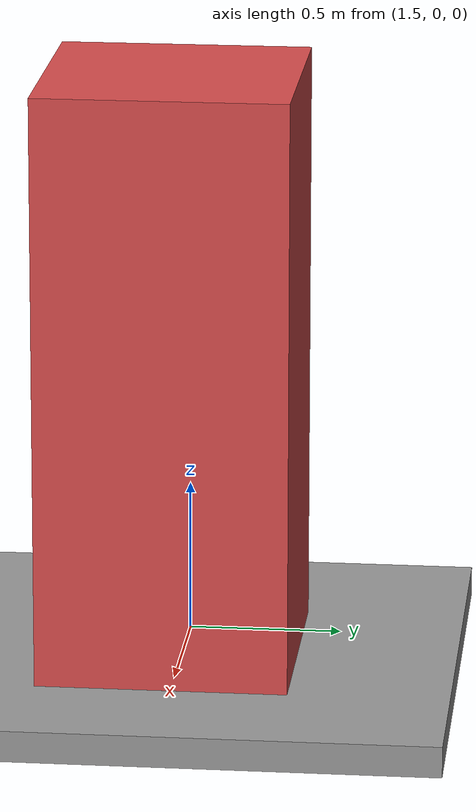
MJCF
<mujoco model="m6_world">
  <size nstack="40000000" nconmax="500000" />
  <worldbody>
    <body name="body_floor" pos="0 0 0">
      <geom name="geom_floor" type="box" size="6 6 0.05" pos="0 0 0.05" euler="0 0 0" rgba="0.6 0.6 0.6 1" contype="1" conaffinity="0" />
    </body>
    <body name="body_pillar_front" pos="0 0 0">
      <geom name="geom_pillar_front" type="box" size="0.4 0.4 1.0" pos="2 0 1.0" euler="0 0 0" rgba="0.85 0.3 0.3 1" contype="1" conaffinity="0" />
    </body>
  </worldbody>
</mujoco>
